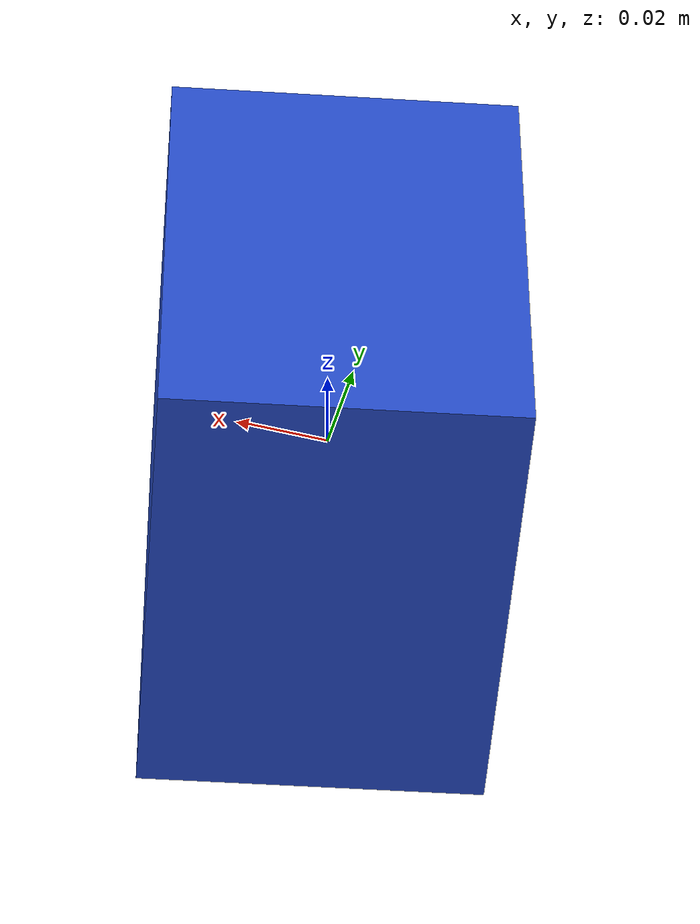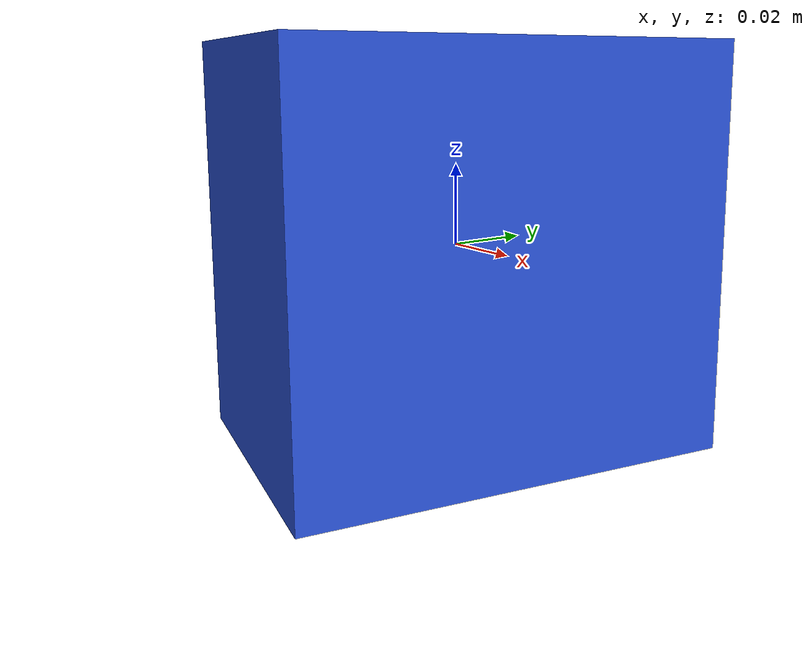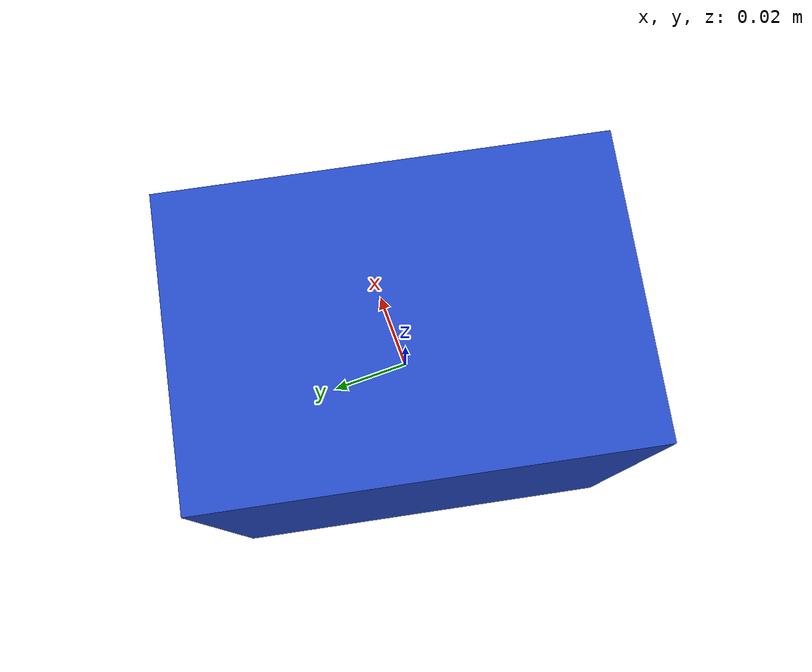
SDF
<sdf version="1.6"><model name="model_13"><static>true</static><link name="link"><pose>0 0 0 0 0 2.943413514045382</pose><collision name="collision"><geometry><box><size>0.0737397049797392 0.10699754253564067 0.1</size></box></geometry></collision><visual name="visual"><geometry><box><size>0.0737397049797392 0.10699754253564067 0.1</size></box></geometry><material><script><name>Gazebo/Blue</name><uri>file://media/materials/scripts/gazebo.material</uri></script></material></visual></link></model></sdf>
